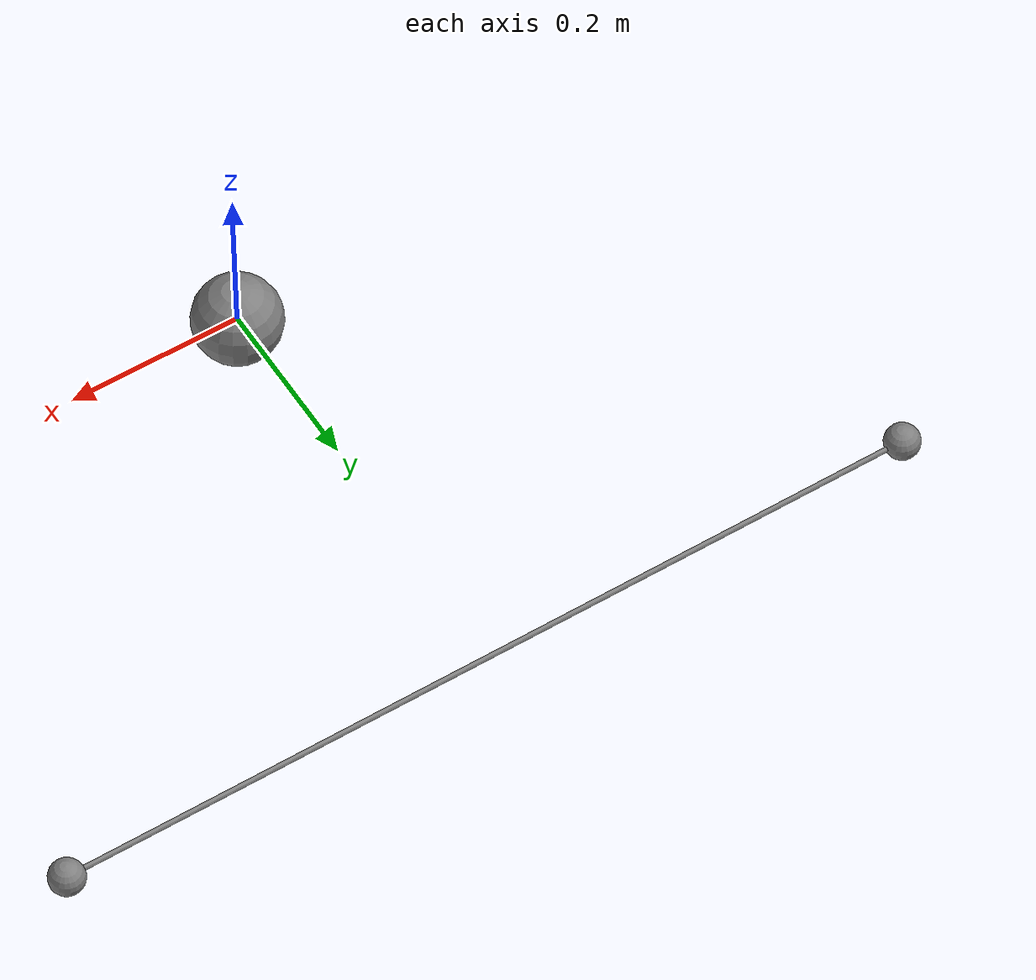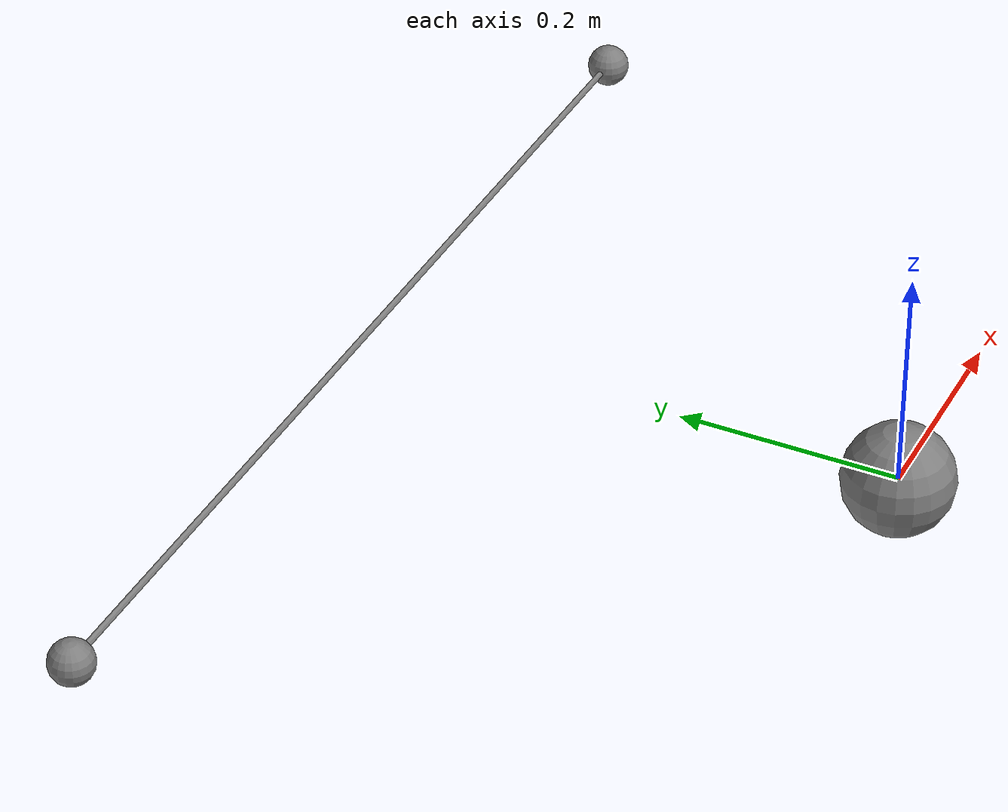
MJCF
<mujoco>
  <worldbody>
    <body name="b1" pos="-0.5 0.5 0">
      <joint name="j1" type="hinge" axis="0 0 1"/>
      <geom type="sphere" size="0.02"/>
      <site name="origin" pos="0 0 0"/>
    </body>
    <body name="wrap_body" pos="0 0 0">
      <geom name="wrap_sphere" type="sphere" size="0.05"/>
    </body>
    <body name="b2" pos="0.5 0.5 0">
      <joint name="j2" type="hinge" axis="0 0 1"/>
      <geom type="sphere" size="0.02"/>
      <site name="insertion" pos="0 0 0"/>
    </body>
  </worldbody>
  <tendon>
    <spatial name="t_nowrap">
      <site site="origin"/>
      <geom geom="wrap_sphere"/>
      <site site="insertion"/>
    </spatial>
  </tendon>
</mujoco>
